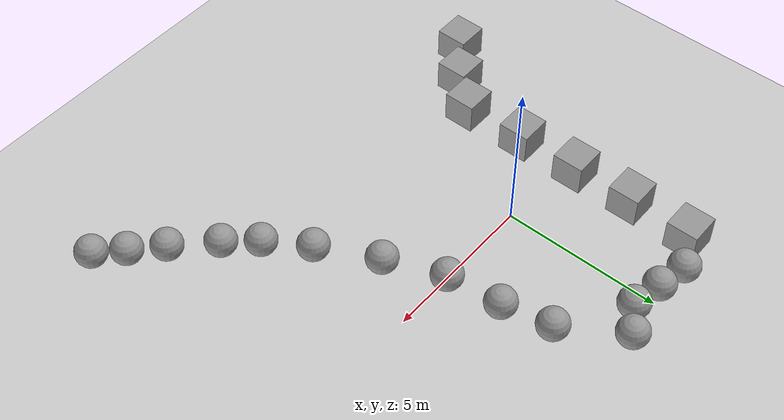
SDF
<sdf version="1.7">
 <world name="default">
  <light name="sun" type="directional">
   <pose>0 0 10 0 -0 0</pose>
   <diffuse>0.8 0.8 0.8 1</diffuse>
   <specular>0.2 0.2 0.2 1</specular>
   <attenuation>
    <range>1000</range>
    <constant>0.9</constant>
    <linear>0.01</linear>
    <quadratic>0.001</quadratic>
   </attenuation>
   <direction>-0.5 0.1 -0.9</direction>
   <spot><inner_angle>0</inner_angle><outer_angle>0</outer_angle><falloff>0</falloff></spot>
  </light>
  <model name="ground_plane">
   <static>1</static>
   <link name="link">
    <collision name="collision">
     <geometry><plane><normal>0 0 1</normal><size>100 100</size></plane></geometry>
     <surface>
      <contact><collide_bitmask>65535</collide_bitmask></contact>
      <friction><ode><mu>100</mu><mu2>50</mu2></ode></friction>
     </surface>
    </collision>
    <visual name="visual">
     <cast_shadows>0</cast_shadows>
     <geometry><plane><normal>0 0 1</normal><size>100 100</size></plane></geometry>
     <material>
      <script><uri>file://media/materials/scripts/gazebo.material</uri><name>Gazebo/Grey</name></script>
     </material>
    </visual>
   </link>
  </model>
  <gravity>0 0 -9.8</gravity>
  <magnetic_field>6e-06 2.3e-05 -4.2e-05</magnetic_field>
  <atmosphere type="adiabatic"/>
  <physics type="ode">
   <max_step_size>0.001</max_step_size>
   <real_time_factor>1</real_time_factor>
   <real_time_update_rate>1000</real_time_update_rate>
  </physics>
  <scene><ambient>0.4 0.4 0.4 1</ambient><background>0.7 0.7 0.7 1</background><shadows>1</shadows></scene>
  <spherical_coordinates>
   <surface_model>EARTH_WGS84</surface_model>
   <latitude_deg>0</latitude_deg>
   <longitude_deg>0</longitude_deg>
   <elevation>0</elevation>
   <heading_deg>0</heading_deg>
  </spherical_coordinates>
  <model name="unit_box">
   <pose>-2.4847 -1.47094 0.499995 0 -1e-05 0</pose>
   <link name="link">
    <inertial>
     <mass>1</mass>
     <inertia>
      <ixx>0.166667</ixx>
      <ixy>0</ixy>
      <ixz>0</ixz>
      <iyy>0.166667</iyy>
      <iyz>0</iyz>
      <izz>0.166667</izz>
     </inertia>
    </inertial>
    <collision name="collision"><geometry><box><size>1 1 1</size></box></geometry></collision>
    <visual name="visual">
     <geometry><box><size>1 1 1</size></box></geometry>
     <material>
      <script><name>Gazebo/Grey</name><uri>file://media/materials/scripts/gazebo.material</uri></script>
     </material>
    </visual>
   </link>
  </model>
  <model name="unit_box_clone">
   <pose>-2.49933 0.52046 0.499995 1e-05 -0 0</pose>
   <link name="link">
    <inertial>
     <mass>1</mass>
     <inertia>
      <ixx>0.166667</ixx>
      <ixy>0</ixy>
      <ixz>0</ixz>
      <iyy>0.166667</iyy>
      <iyz>0</iyz>
      <izz>0.166667</izz>
     </inertia>
    </inertial>
    <collision name="collision"><geometry><box><size>1 1 1</size></box></geometry></collision>
    <visual name="visual">
     <geometry><box><size>1 1 1</size></box></geometry>
     <material>
      <script><name>Gazebo/Grey</name><uri>file://media/materials/scripts/gazebo.material</uri></script>
     </material>
    </visual>
   </link>
  </model>
  <model name="unit_box_clone_0">
   <pose>-2.51948 2.48565 0.499995 0 -1e-05 0</pose>
   <link name="link">
    <inertial>
     <mass>1</mass>
     <inertia>
      <ixx>0.166667</ixx>
      <ixy>0</ixy>
      <ixz>0</ixz>
      <iyy>0.166667</iyy>
      <iyz>0</iyz>
      <izz>0.166667</izz>
     </inertia>
    </inertial>
    <collision name="collision"><geometry><box><size>1 1 1</size></box></geometry></collision>
    <visual name="visual">
     <geometry><box><size>1 1 1</size></box></geometry>
     <material>
      <script><name>Gazebo/Grey</name><uri>file://media/materials/scripts/gazebo.material</uri></script>
     </material>
    </visual>
   </link>
  </model>
  <model name="unit_box_clone_1">
   <pose>-2.43451 -3.51555 0.499995 1e-05 -0 0</pose>
   <link name="link">
    <inertial>
     <mass>1</mass>
     <inertia>
      <ixx>0.166667</ixx>
      <ixy>0</ixy>
      <ixz>0</ixz>
      <iyy>0.166667</iyy>
      <iyz>0</iyz>
      <izz>0.166667</izz>
     </inertia>
    </inertial>
    <collision name="collision"><geometry><box><size>1 1 1</size></box></geometry></collision>
    <visual name="visual">
     <geometry><box><size>1 1 1</size></box></geometry>
     <material>
      <script><name>Gazebo/Grey</name><uri>file://media/materials/scripts/gazebo.material</uri></script>
     </material>
    </visual>
   </link>
  </model>
  <model name="unit_box_clone_2">
   <pose>-2.45727 4.515 0.499995 0 -1e-05 0</pose>
   <link name="link">
    <inertial>
     <mass>1</mass>
     <inertia>
      <ixx>0.166667</ixx>
      <ixy>0</ixy>
      <ixz>0</ixz>
      <iyy>0.166667</iyy>
      <iyz>0</iyz>
      <izz>0.166667</izz>
     </inertia>
    </inertial>
    <collision name="collision"><geometry><box><size>1 1 1</size></box></geometry></collision>
    <visual name="visual">
     <geometry><box><size>1 1 1</size></box></geometry>
     <material>
      <script><name>Gazebo/Grey</name><uri>file://media/materials/scripts/gazebo.material</uri></script>
     </material>
    </visual>
   </link>
  </model>
  <model name="unit_box_clone_3">
   <pose>-3.36617 -4.56593 0.499995 1e-05 -0 0</pose>
   <link name="link">
    <inertial>
     <mass>1</mass>
     <inertia>
      <ixx>0.166667</ixx>
      <ixy>0</ixy>
      <ixz>0</ixz>
      <iyy>0.166667</iyy>
      <iyz>0</iyz>
      <izz>0.166667</izz>
     </inertia>
    </inertial>
    <collision name="collision"><geometry><box><size>1 1 1</size></box></geometry></collision>
    <visual name="visual">
     <geometry><box><size>1 1 1</size></box></geometry>
     <material>
      <script><name>Gazebo/Grey</name><uri>file://media/materials/scripts/gazebo.material</uri></script>
     </material>
    </visual>
   </link>
  </model>
  <model name="unit_box_clone_4">
   <pose>-4.53034 -5.48217 0.499995 0 -1e-05 0</pose>
   <link name="link">
    <inertial>
     <mass>1</mass>
     <inertia>
      <ixx>0.166667</ixx>
      <ixy>0</ixy>
      <ixz>0</ixz>
      <iyy>0.166667</iyy>
      <iyz>0</iyz>
      <izz>0.166667</izz>
     </inertia>
    </inertial>
    <collision name="collision"><geometry><box><size>1 1 1</size></box></geometry></collision>
    <visual name="visual">
     <geometry><box><size>1 1 1</size></box></geometry>
     <material>
      <script><name>Gazebo/Grey</name><uri>file://media/materials/scripts/gazebo.material</uri></script>
     </material>
    </visual>
   </link>
  </model>
  <model name="unit_sphere">
   <pose>-1.33879 5.07824 0.5 0 -0 0</pose>
   <link name="link">
    <inertial>
     <mass>1</mass>
     <inertia><ixx>0.1</ixx><ixy>0</ixy><ixz>0</ixz><iyy>0.1</iyy><iyz>0</iyz><izz>0.1</izz></inertia>
    </inertial>
    <collision name="collision"><geometry><sphere><radius>0.5</radius></sphere></geometry></collision>
    <visual name="visual">
     <geometry><sphere><radius>0.5</radius></sphere></geometry>
     <material>
      <script><name>Gazebo/Grey</name><uri>file://media/materials/scripts/gazebo.material</uri></script>
     </material>
    </visual>
   </link>
  </model>
  <model name="unit_sphere_clone">
   <pose>-0.353912 4.88898 0.5 -2.5e-05 -0.007962 -0.062411</pose>
   <link name="link">
    <inertial>
     <mass>1</mass>
     <inertia><ixx>0.1</ixx><ixy>0</ixy><ixz>0</ixz><iyy>0.1</iyy><iyz>0</iyz><izz>0.1</izz></inertia>
    </inertial>
    <collision name="collision"><geometry><sphere><radius>0.5</radius></sphere></geometry></collision>
    <visual name="visual">
     <geometry><sphere><radius>0.5</radius></sphere></geometry>
     <material>
      <script><name>Gazebo/Grey</name><uri>file://media/materials/scripts/gazebo.material</uri></script>
     </material>
    </visual>
   </link>
  </model>
  <model name="unit_sphere_clone_0">
   <pose>0.638409 4.69845 0.5 0.007877 0.011664 0.047016</pose>
   <link name="link">
    <inertial>
     <mass>1</mass>
     <inertia><ixx>0.1</ixx><ixy>0</ixy><ixz>0</ixz><iyy>0.1</iyy><iyz>0</iyz><izz>0.1</izz></inertia>
    </inertial>
    <collision name="collision"><geometry><sphere><radius>0.5</radius></sphere></geometry></collision>
    <visual name="visual">
     <geometry><sphere><radius>0.5</radius></sphere></geometry>
     <material>
      <script><name>Gazebo/Grey</name><uri>file://media/materials/scripts/gazebo.material</uri></script>
     </material>
    </visual>
   </link>
  </model>
  <model name="unit_sphere_clone_1">
   <pose>1.49495 5.2239 0.5 -0.003718 0.009549 0.109291</pose>
   <link name="link">
    <inertial>
     <mass>1</mass>
     <inertia><ixx>0.1</ixx><ixy>0</ixy><ixz>0</ixz><iyy>0.1</iyy><iyz>0</iyz><izz>0.1</izz></inertia>
    </inertial>
    <collision name="collision"><geometry><sphere><radius>0.5</radius></sphere></geometry></collision>
    <visual name="visual">
     <geometry><sphere><radius>0.5</radius></sphere></geometry>
     <material>
      <script><name>Gazebo/Grey</name><uri>file://media/materials/scripts/gazebo.material</uri></script>
     </material>
    </visual>
   </link>
  </model>
  <model name="unit_sphere_clone_2">
   <pose>2.68328 3.39796 0.5 0 -0 0</pose>
   <link name="link">
    <inertial>
     <mass>1</mass>
     <inertia><ixx>0.1</ixx><ixy>0</ixy><ixz>0</ixz><iyy>0.1</iyy><iyz>0</iyz><izz>0.1</izz></inertia>
    </inertial>
    <collision name="collision"><geometry><sphere><radius>0.5</radius></sphere></geometry></collision>
    <visual name="visual">
     <geometry><sphere><radius>0.5</radius></sphere></geometry>
     <material>
      <script><name>Gazebo/Grey</name><uri>file://media/materials/scripts/gazebo.material</uri></script>
     </material>
    </visual>
   </link>
  </model>
  <model name="unit_sphere_clone_3">
   <pose>3.00666 1.85606 0.5 0 -0 0</pose>
   <link name="link">
    <inertial>
     <mass>1</mass>
     <inertia><ixx>0.1</ixx><ixy>0</ixy><ixz>0</ixz><iyy>0.1</iyy><iyz>0</iyz><izz>0.1</izz></inertia>
    </inertial>
    <collision name="collision"><geometry><sphere><radius>0.5</radius></sphere></geometry></collision>
    <visual name="visual">
     <geometry><sphere><radius>0.5</radius></sphere></geometry>
     <material>
      <script><name>Gazebo/Grey</name><uri>file://media/materials/scripts/gazebo.material</uri></script>
     </material>
    </visual>
   </link>
  </model>
  <model name="unit_sphere_clone_4">
   <pose>3.21265 0.123418 0.5 0 -0 0</pose>
   <link name="link">
    <inertial>
     <mass>1</mass>
     <inertia><ixx>0.1</ixx><ixy>0</ixy><ixz>0</ixz><iyy>0.1</iyy><iyz>0</iyz><izz>0.1</izz></inertia>
    </inertial>
    <collision name="collision"><geometry><sphere><radius>0.5</radius></sphere></geometry></collision>
    <visual name="visual">
     <geometry><sphere><radius>0.5</radius></sphere></geometry>
     <material>
      <script><name>Gazebo/Grey</name><uri>file://media/materials/scripts/gazebo.material</uri></script>
     </material>
    </visual>
   </link>
  </model>
  <model name="unit_sphere_clone_5">
   <pose>3.92622 -1.67238 0.5 0 -0 0</pose>
   <link name="link">
    <inertial>
     <mass>1</mass>
     <inertia><ixx>0.1</ixx><ixy>0</ixy><ixz>0</ixz><iyy>0.1</iyy><iyz>0</iyz><izz>0.1</izz></inertia>
    </inertial>
    <collision name="collision"><geometry><sphere><radius>0.5</radius></sphere></geometry></collision>
    <visual name="visual">
     <geometry><sphere><radius>0.5</radius></sphere></geometry>
     <material>
      <script><name>Gazebo/Grey</name><uri>file://media/materials/scripts/gazebo.material</uri></script>
     </material>
    </visual>
   </link>
  </model>
  <model name="unit_sphere_clone_6">
   <pose>4.84473 -3.47368 0.5 0 -0 0</pose>
   <link name="link">
    <inertial>
     <mass>1</mass>
     <inertia><ixx>0.1</ixx><ixy>0</ixy><ixz>0</ixz><iyy>0.1</iyy><iyz>0</iyz><izz>0.1</izz></inertia>
    </inertial>
    <collision name="collision"><geometry><sphere><radius>0.5</radius></sphere></geometry></collision>
    <visual name="visual">
     <geometry><sphere><radius>0.5</radius></sphere></geometry>
     <material>
      <script><name>Gazebo/Grey</name><uri>file://media/materials/scripts/gazebo.material</uri></script>
     </material>
    </visual>
   </link>
  </model>
  <model name="unit_sphere_clone_7">
   <pose>5.66989 -4.75066 0.5 0 -0 0</pose>
   <link name="link">
    <inertial>
     <mass>1</mass>
     <inertia><ixx>0.1</ixx><ixy>0</ixy><ixz>0</ixz><iyy>0.1</iyy><iyz>0</iyz><izz>0.1</izz></inertia>
    </inertial>
    <collision name="collision"><geometry><sphere><radius>0.5</radius></sphere></geometry></collision>
    <visual name="visual">
     <geometry><sphere><radius>0.5</radius></sphere></geometry>
     <material>
      <script><name>Gazebo/Grey</name><uri>file://media/materials/scripts/gazebo.material</uri></script>
     </material>
    </visual>
   </link>
  </model>
  <model name="unit_sphere_clone_8">
   <pose>6.43523 -5.61367 0.5 0 -0 0</pose>
   <link name="link">
    <inertial>
     <mass>1</mass>
     <inertia><ixx>0.1</ixx><ixy>0</ixy><ixz>0</ixz><iyy>0.1</iyy><iyz>0</iyz><izz>0.1</izz></inertia>
    </inertial>
    <collision name="collision"><geometry><sphere><radius>0.5</radius></sphere></geometry></collision>
    <visual name="visual">
     <geometry><sphere><radius>0.5</radius></sphere></geometry>
     <material>
      <script><name>Gazebo/Grey</name><uri>file://media/materials/scripts/gazebo.material</uri></script>
     </material>
    </visual>
   </link>
  </model>
  <model name="unit_sphere_clone_9">
   <pose>7.52564 -6.70191 0.5 0 -0 0</pose>
   <link name="link">
    <inertial>
     <mass>1</mass>
     <inertia><ixx>0.1</ixx><ixy>0</ixy><ixz>0</ixz><iyy>0.1</iyy><iyz>0</iyz><izz>0.1</izz></inertia>
    </inertial>
    <collision name="collision"><geometry><sphere><radius>0.5</radius></sphere></geometry></collision>
    <visual name="visual">
     <geometry><sphere><radius>0.5</radius></sphere></geometry>
     <material>
      <script><name>Gazebo/Grey</name><uri>file://media/materials/scripts/gazebo.material</uri></script>
     </material>
    </visual>
   </link>
  </model>
  <model name="unit_sphere_clone_10">
   <pose>8.37213 -7.46807 0.5 -0.007079 -0.007189 2.6e-05</pose>
   <link name="link">
    <inertial>
     <mass>1</mass>
     <inertia><ixx>0.1</ixx><ixy>0</ixy><ixz>0</ixz><iyy>0.1</iyy><iyz>0</iyz><izz>0.1</izz></inertia>
    </inertial>
    <collision name="collision"><geometry><sphere><radius>0.5</radius></sphere></geometry></collision>
    <visual name="visual">
     <geometry><sphere><radius>0.5</radius></sphere></geometry>
     <material>
      <script><name>Gazebo/Grey</name><uri>file://media/materials/scripts/gazebo.material</uri></script>
     </material>
    </visual>
   </link>
  </model>
  <model name="unit_sphere_clone_11">
   <pose>9.09177 -8.17672 0.5 0.007068 0.007175 2.6e-05</pose>
   <link name="link">
    <inertial>
     <mass>1</mass>
     <inertia><ixx>0.1</ixx><ixy>0</ixy><ixz>0</ixz><iyy>0.1</iyy><iyz>0</iyz><izz>0.1</izz></inertia>
    </inertial>
    <collision name="collision"><geometry><sphere><radius>0.5</radius></sphere></geometry></collision>
    <visual name="visual">
     <geometry><sphere><radius>0.5</radius></sphere></geometry>
     <material>
      <script><name>Gazebo/Grey</name><uri>file://media/materials/scripts/gazebo.material</uri></script>
     </material>
    </visual>
   </link>
  </model>
 </world>
</sdf>
